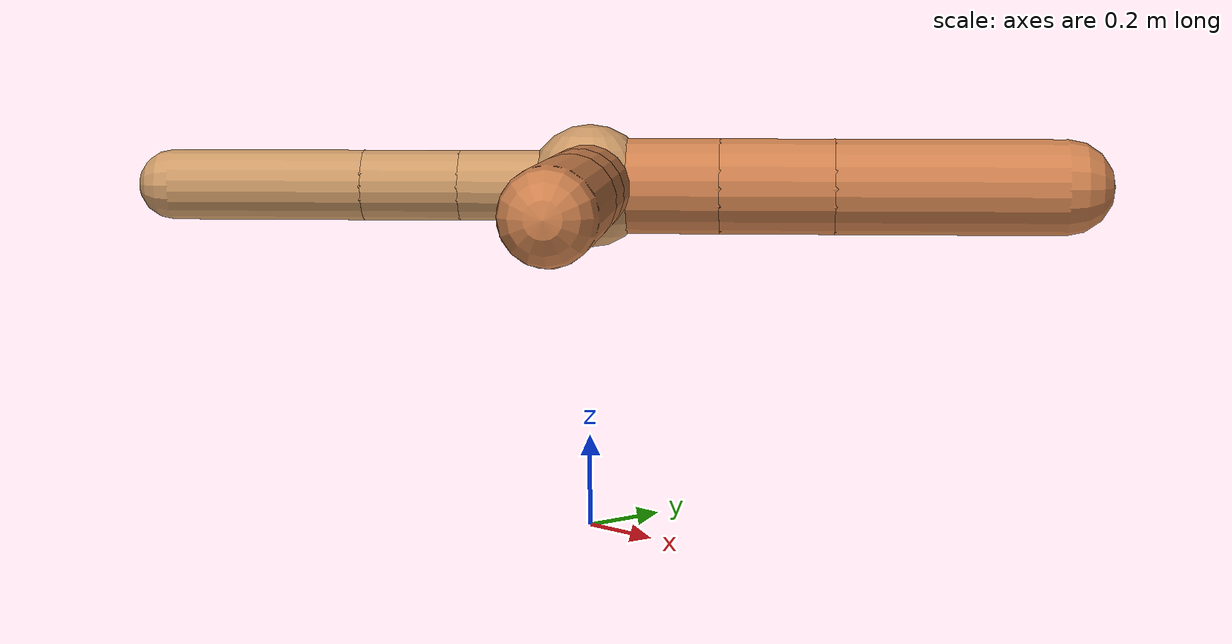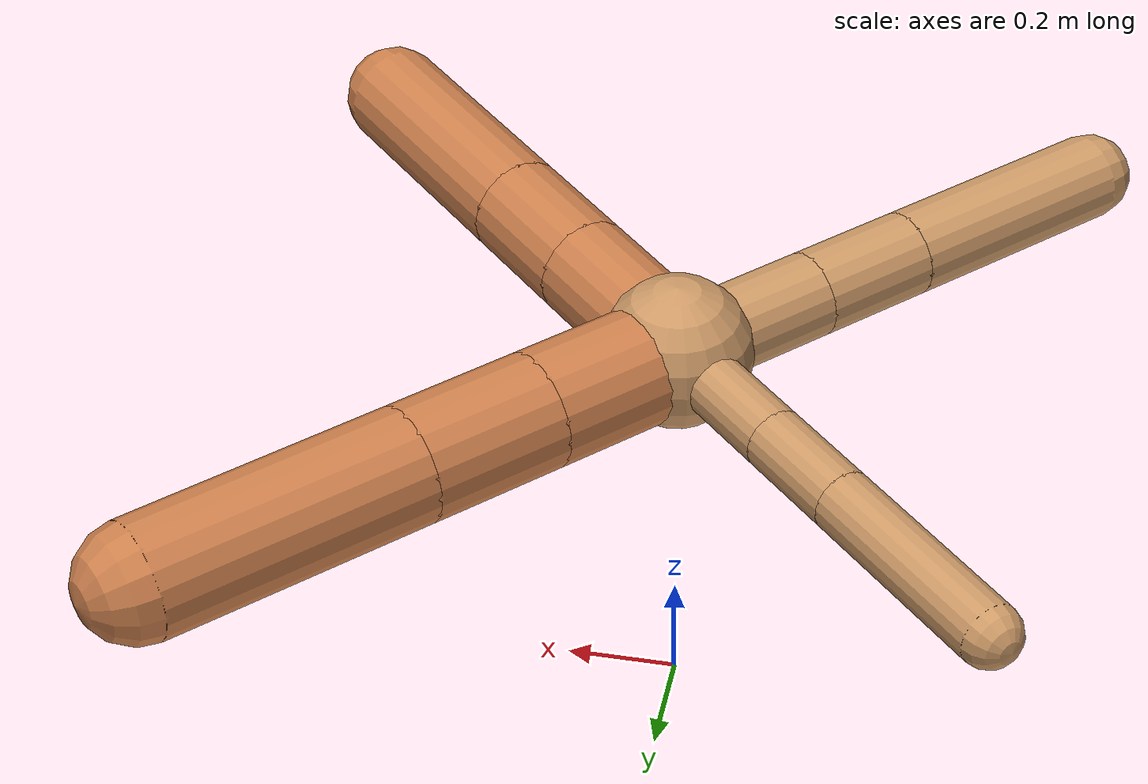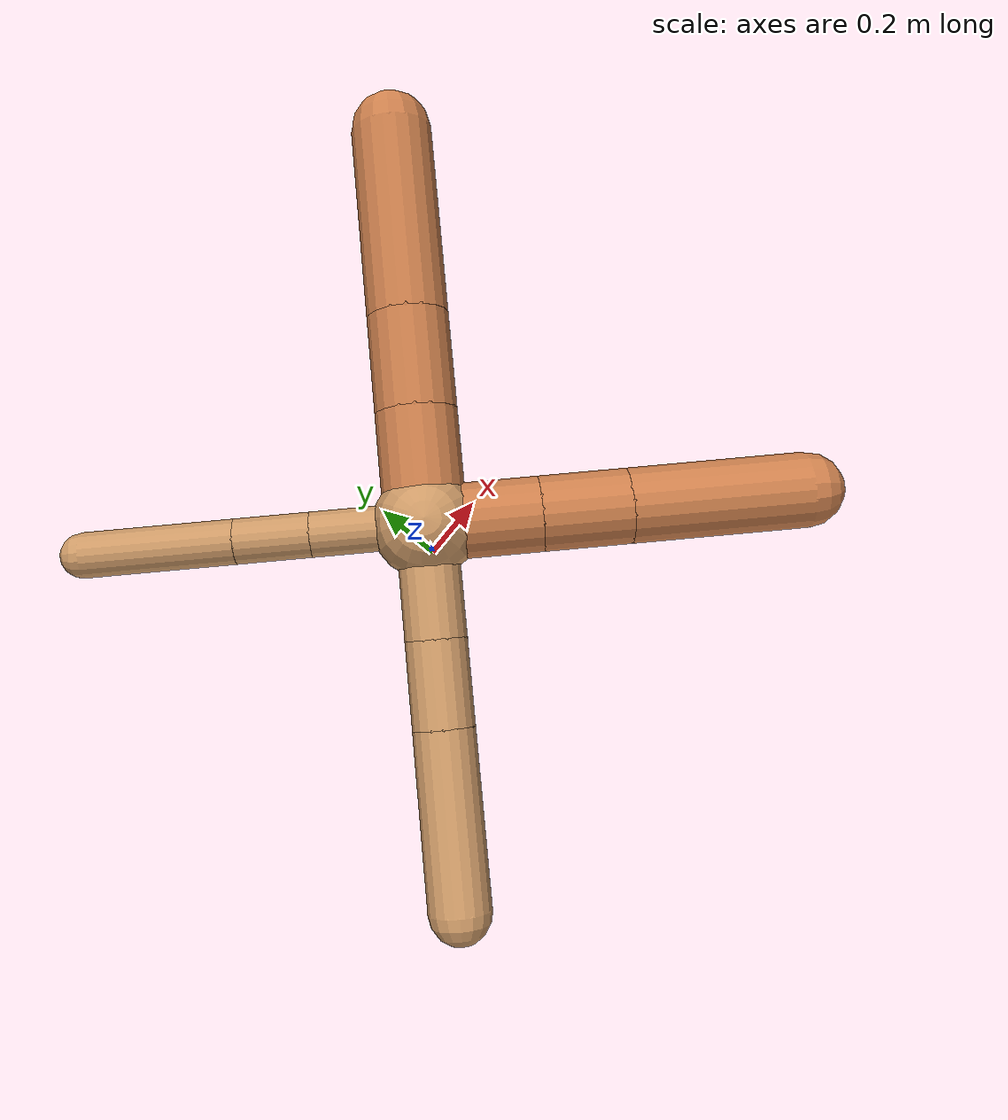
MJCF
<?xml version="1.0" ?>
<mujoco model="ant">

	<compiler angle="degree" coordinate="local" inertiafromgeom="true"/>

	<option integrator="RK4" timestep="0.01"/>

	<custom>

		<numeric data="0.0 0.0 0.55 1.0 0.0 0.0 0.0 0.0 1.0 0.0 -1.0 0.0 -1.0 0.0 1.0" name="init_qpos"/>

	</custom>

	<default>

		<joint armature="1" damping="1" limited="true"/>

		<geom conaffinity="0" condim="3" density="5.0" friction="1.5 0.1 0.1" margin="0.01" rgba="0.8 0.6 0.4 1"/>

	</default>

	<worldbody>

		<body name="torso" pos="0 0 0.75">

			<geom name="torso_geom" pos="0 0 0" size="0.13397216863193928" type="sphere"/>

			<!--joint armature="0" damping="0" limited="false" margin="0.01" name="root" pos="0 0 0" type="free"/-->

			<body name="front_left_leg" pos="0 0 0">

				<geom fromto="0 0 0 0.2 0.2 0" name="aux_1_geom" size="0.10399041603751329" type="capsule" rgba=".8 .5 .3 1"/>

				<body name="aux_1" pos="0.2 0.2 0">

					<joint axis="0 0 1" name="hip_1" pos="0.0 0.0 0.0" range="-40 40" type="hinge"/>

					<geom fromto="0 0 0 0.17588812283889574 0.17588812283889574 0" name="left_leg_geom" size="0.10399041603751329" type="capsule" rgba=".8 .5 .3 1"/>

					<body pos="0.17588812283889574 0.17588812283889574 0" name="front_left_foot">

						<joint axis="-1 1 0" name="ankle_1" pos="0.0 0.0 0.0" range="30 100" type="hinge"/>

						<geom fromto="0 0 0 0.3517762456777915 0.3517762456777915 0" name="left_ankle_geom" size="0.10399041603751329" type="capsule" rgba=".8 .5 .3 1"/>

					</body>

				</body>

			</body>

			<body name="front_right_leg" pos="0 0 0">

				<geom fromto="0 0 0 -0.2 0.2 0" name="aux_2_geom" size="0.056144659112324434" type="capsule"/>

				<body name="aux_2" pos="-0.2 0.2 0">

					<joint axis="0 0 1" name="hip_2" pos="0.0 0.0 0.0" range="-40 40" type="hinge"/>

					<geom fromto="0 0 0 -0.13162236922694157 0.13162236922694157 0" name="right_leg_geom" size="0.056144659112324434" type="capsule"/>

					<body pos="-0.13162236922694157 0.13162236922694157 0" name="front_right_foot">

						<joint axis="1 1 0" name="ankle_2" pos="0.0 0.0 0.0" range="-100 -30" type="hinge"/>

						<geom fromto="0 0 0 -0.26324473845388313 0.26324473845388313 0" name="right_ankle_geom" size="0.056144659112324434" type="capsule"/>

					</body>

				</body>

			</body>

			<body name="left_back_leg" pos="0 0 0">

				<geom fromto="0 0 0 -0.2 -0.2 0" name="aux_3_geom" size="0.07686457402953206" type="capsule"/>

				<body name="aux_3" pos="-0.2 -0.2 0">

					<joint axis="0 0 1" name="hip_3" pos="0.0 0.0 0.0" range="-40 40" type="hinge"/>

					<geom fromto="0 0 0 -0.14988157668490218 -0.14988157668490218 0" name="back_leg_geom" size="0.07686457402953206" type="capsule"/>

					<body pos="-0.14988157668490218 -0.14988157668490218 0" name="left_back_foot">

						<joint axis="-1 1 0" name="ankle_3" pos="0.0 0.0 0.0" range="-100 -30" type="hinge"/>

						<geom fromto="0 0 0 -0.29976315336980436 -0.29976315336980436 0" name="third_ankle_geom" size="0.07686457402953206" type="capsule"/>

					</body>

				</body>

			</body>

			<body name="right_back_leg" pos="0 0 0">

				<geom fromto="0 0 0 0.2 -0.2 0" name="aux_4_geom" size="0.09362189487459494" type="capsule" rgba=".8 .5 .3 1"/>

				<body name="aux_4" pos="0.2 -0.2 0">

					<joint axis="0 0 1" name="hip_4" pos="0.0 0.0 0.0" range="-40 40" type="hinge"/>

					<geom fromto="0 0 0 0.1551700145092901 -0.1551700145092901 0" name="rightback_leg_geom" size="0.09362189487459494" type="capsule" rgba=".8 .5 .3 1"/>

					<body pos="0.1551700145092901 -0.1551700145092901 0" name="right_back_foot">

						<joint axis="1 1 0" name="ankle_4" pos="0.0 0.0 0.0" range="30 100" type="hinge"/>

						<geom fromto="0 0 0 0.3103400290185802 -0.3103400290185802 0" name="fourth_ankle_geom" size="0.09362189487459494" type="capsule" rgba=".8 .5 .3 1"/>

					</body>

				</body>

			</body>

		</body>

	</worldbody>

	<actuator>

		<motor ctrllimited="true" ctrlrange="-1.0 1.0" joint="hip_4" gear="150"/>

		<motor ctrllimited="true" ctrlrange="-1.0 1.0" joint="ankle_4" gear="150"/>

		<motor ctrllimited="true" ctrlrange="-1.0 1.0" joint="hip_1" gear="150"/>

		<motor ctrllimited="true" ctrlrange="-1.0 1.0" joint="ankle_1" gear="150"/>

		<motor ctrllimited="true" ctrlrange="-1.0 1.0" joint="hip_2" gear="150"/>

		<motor ctrllimited="true" ctrlrange="-1.0 1.0" joint="ankle_2" gear="150"/>

		<motor ctrllimited="true" ctrlrange="-1.0 1.0" joint="hip_3" gear="150"/>

		<motor ctrllimited="true" ctrlrange="-1.0 1.0" joint="ankle_3" gear="150"/>

	</actuator>

</mujoco>
